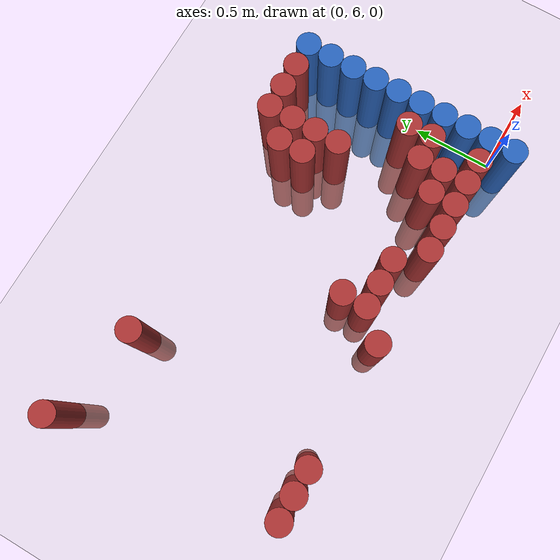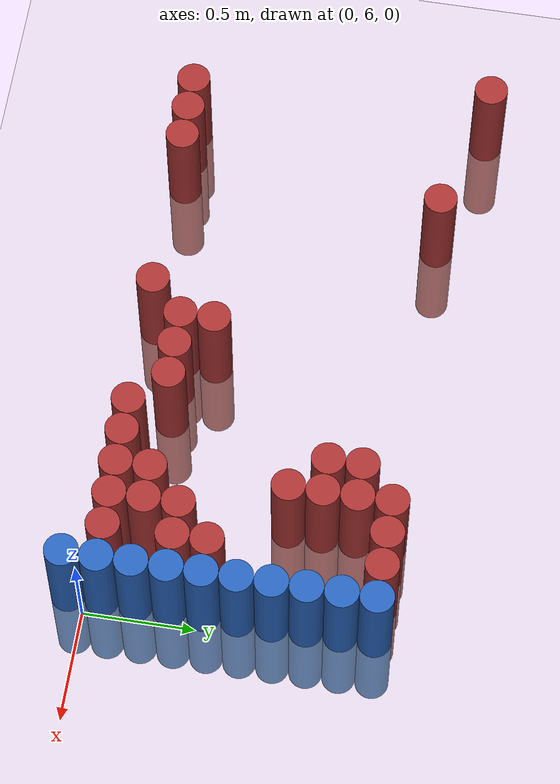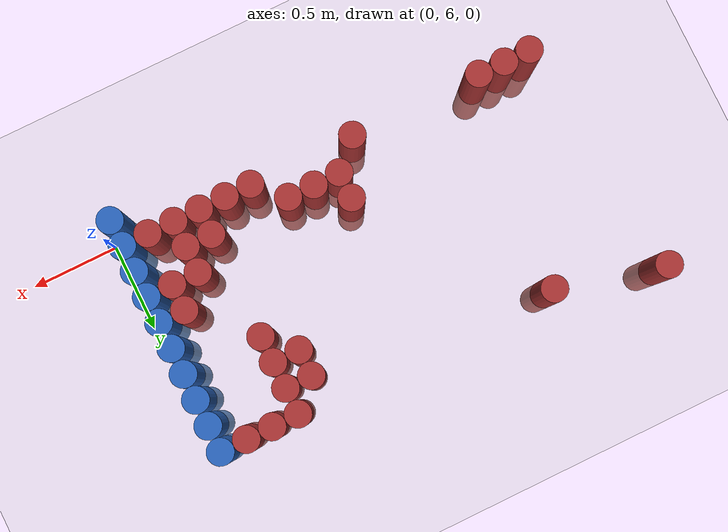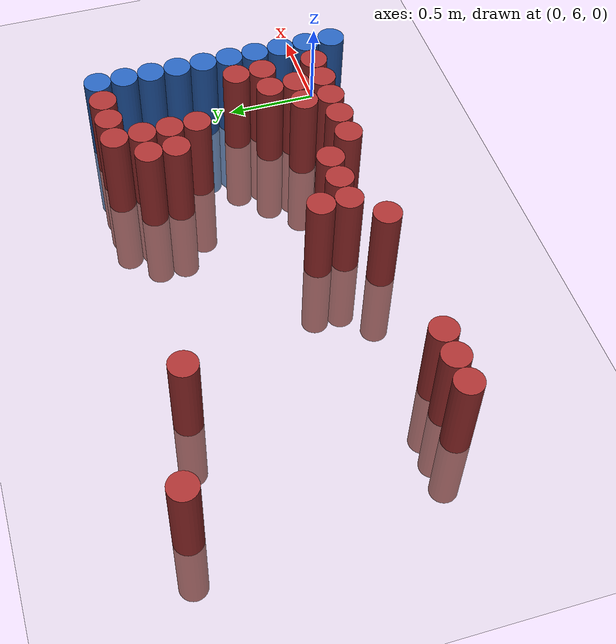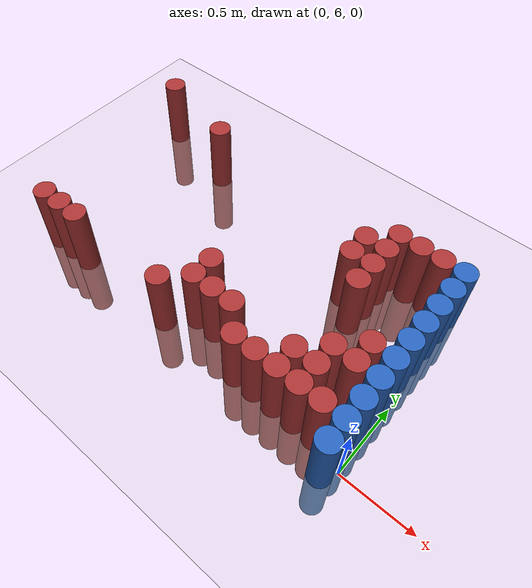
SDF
<sdf version="1.6">
 <world name="default">
  <model name="ground_plane">
   <static>1</static>
   <link name="link">
    <collision name="collision">
     <geometry><plane><normal>0 0 1</normal><size>100 100</size></plane></geometry>
     <surface><friction><ode><mu>100</mu><mu2>50</mu2></ode></friction></surface>
    </collision>
    <visual name="visual">
     <cast_shadows>0</cast_shadows>
     <geometry><plane><normal>0 0 1</normal><size>100 100</size></plane></geometry>
     <material>
      <script><uri>file://media/materials/scripts/gazebo.material</uri><name>Gazebo/Grey</name></script>
     </material>
    </visual>
   </link>
  </model>
  <model name="unit_cylinder_194">
   <static>1</static>
   <pose>-2.625000 7.425000 0.000000 0.000000 0.000000 0.000000</pose>
   <link name="link">
    <inertial>
     <mass>1</mass>
     <inertia><ixx>0.145833</ixx><ixy>0</ixy><ixz>0</ixz><iyy>0.145833</iyy><iyz>0</iyz><izz>0.125</izz></inertia>
    </inertial>
    <collision name="collision">
     <geometry><cylinder><radius>0.075000</radius><length>1</length></cylinder></geometry>
    </collision>
    <visual name="visual">
     <geometry><cylinder><radius>0.075000</radius><length>1</length></cylinder></geometry>
     <material>
      <ambient>0.648000 0.192000 0.192000 1</ambient>
      <diffuse>0.648000 0.192000 0.192000 1</diffuse>
     </material>
     <material>
      <script><name>Gazebo/Grey</name><uri>file://media/materials/scripts/gazebo.material</uri></script>
     </material>
    </visual>
    <sensor name="sensor_contact" type="contact"><contact><collision>collision</collision></contact></sensor>
   </link>
   <plugin filename="gz-sim-touchplugin-system" name="gz::sim::systems::TouchPlugin">
    <target>robot</target>
    <namespace>robot</namespace>
    <time>0.001</time>
    <enabled>true</enabled>
   </plugin>
  </model>
  <model name="unit_cylinder_200">
   <static>1</static>
   <pose>-2.475000 6.075000 0.000000 0.000000 0.000000 0.000000</pose>
   <link name="link">
    <inertial>
     <mass>1</mass>
     <inertia><ixx>0.145833</ixx><ixy>0</ixy><ixz>0</ixz><iyy>0.145833</iyy><iyz>0</iyz><izz>0.125</izz></inertia>
    </inertial>
    <collision name="collision">
     <geometry><cylinder><radius>0.075000</radius><length>1</length></cylinder></geometry>
    </collision>
    <visual name="visual">
     <geometry><cylinder><radius>0.075000</radius><length>1</length></cylinder></geometry>
     <material>
      <ambient>0.648000 0.192000 0.192000 1</ambient>
      <diffuse>0.648000 0.192000 0.192000 1</diffuse>
     </material>
     <material>
      <script><name>Gazebo/Grey</name><uri>file://media/materials/scripts/gazebo.material</uri></script>
     </material>
    </visual>
    <sensor name="sensor_contact" type="contact"><contact><collision>collision</collision></contact></sensor>
   </link>
   <plugin filename="gz-sim-touchplugin-system" name="gz::sim::systems::TouchPlugin">
    <target>robot</target>
    <namespace>robot</namespace>
    <time>0.001</time>
    <enabled>true</enabled>
   </plugin>
  </model>
  <model name="unit_cylinder_207">
   <static>1</static>
   <pose>-2.325000 6.075000 0.000000 0.000000 0.000000 0.000000</pose>
   <link name="link">
    <inertial>
     <mass>1</mass>
     <inertia><ixx>0.145833</ixx><ixy>0</ixy><ixz>0</ixz><iyy>0.145833</iyy><iyz>0</iyz><izz>0.125</izz></inertia>
    </inertial>
    <collision name="collision">
     <geometry><cylinder><radius>0.075000</radius><length>1</length></cylinder></geometry>
    </collision>
    <visual name="visual">
     <geometry><cylinder><radius>0.075000</radius><length>1</length></cylinder></geometry>
     <material>
      <ambient>0.648000 0.192000 0.192000 1</ambient>
      <diffuse>0.648000 0.192000 0.192000 1</diffuse>
     </material>
     <material>
      <script><name>Gazebo/Grey</name><uri>file://media/materials/scripts/gazebo.material</uri></script>
     </material>
    </visual>
    <sensor name="sensor_contact" type="contact"><contact><collision>collision</collision></contact></sensor>
   </link>
   <plugin filename="gz-sim-touchplugin-system" name="gz::sim::systems::TouchPlugin">
    <target>robot</target>
    <namespace>robot</namespace>
    <time>0.001</time>
    <enabled>true</enabled>
   </plugin>
  </model>
  <model name="unit_cylinder_217">
   <static>1</static>
   <pose>-2.175000 6.075000 0.000000 0.000000 0.000000 0.000000</pose>
   <link name="link">
    <inertial>
     <mass>1</mass>
     <inertia><ixx>0.145833</ixx><ixy>0</ixy><ixz>0</ixz><iyy>0.145833</iyy><iyz>0</iyz><izz>0.125</izz></inertia>
    </inertial>
    <collision name="collision">
     <geometry><cylinder><radius>0.075000</radius><length>1</length></cylinder></geometry>
    </collision>
    <visual name="visual">
     <geometry><cylinder><radius>0.075000</radius><length>1</length></cylinder></geometry>
     <material>
      <ambient>0.648000 0.192000 0.192000 1</ambient>
      <diffuse>0.648000 0.192000 0.192000 1</diffuse>
     </material>
     <material>
      <script><name>Gazebo/Grey</name><uri>file://media/materials/scripts/gazebo.material</uri></script>
     </material>
    </visual>
    <sensor name="sensor_contact" type="contact"><contact><collision>collision</collision></contact></sensor>
   </link>
   <plugin filename="gz-sim-touchplugin-system" name="gz::sim::systems::TouchPlugin">
    <target>robot</target>
    <namespace>robot</namespace>
    <time>0.001</time>
    <enabled>true</enabled>
   </plugin>
  </model>
  <model name="unit_cylinder_231">
   <static>1</static>
   <pose>-2.025000 7.275000 0.000000 0.000000 0.000000 0.000000</pose>
   <link name="link">
    <inertial>
     <mass>1</mass>
     <inertia><ixx>0.145833</ixx><ixy>0</ixy><ixz>0</ixz><iyy>0.145833</iyy><iyz>0</iyz><izz>0.125</izz></inertia>
    </inertial>
    <collision name="collision">
     <geometry><cylinder><radius>0.075000</radius><length>1</length></cylinder></geometry>
    </collision>
    <visual name="visual">
     <geometry><cylinder><radius>0.075000</radius><length>1</length></cylinder></geometry>
     <material>
      <ambient>0.648000 0.192000 0.192000 1</ambient>
      <diffuse>0.648000 0.192000 0.192000 1</diffuse>
     </material>
     <material>
      <script><name>Gazebo/Grey</name><uri>file://media/materials/scripts/gazebo.material</uri></script>
     </material>
    </visual>
    <sensor name="sensor_contact" type="contact"><contact><collision>collision</collision></contact></sensor>
   </link>
   <plugin filename="gz-sim-touchplugin-system" name="gz::sim::systems::TouchPlugin">
    <target>robot</target>
    <namespace>robot</namespace>
    <time>0.001</time>
    <enabled>true</enabled>
   </plugin>
  </model>
  <model name="unit_cylinder_248">
   <static>1</static>
   <pose>-1.425000 6.075000 0.000000 0.000000 0.000000 0.000000</pose>
   <link name="link">
    <inertial>
     <mass>1</mass>
     <inertia><ixx>0.145833</ixx><ixy>0</ixy><ixz>0</ixz><iyy>0.145833</iyy><iyz>0</iyz><izz>0.125</izz></inertia>
    </inertial>
    <collision name="collision">
     <geometry><cylinder><radius>0.075000</radius><length>1</length></cylinder></geometry>
    </collision>
    <visual name="visual">
     <geometry><cylinder><radius>0.075000</radius><length>1</length></cylinder></geometry>
     <material>
      <ambient>0.648000 0.192000 0.192000 1</ambient>
      <diffuse>0.648000 0.192000 0.192000 1</diffuse>
     </material>
     <material>
      <script><name>Gazebo/Grey</name><uri>file://media/materials/scripts/gazebo.material</uri></script>
     </material>
    </visual>
    <sensor name="sensor_contact" type="contact"><contact><collision>collision</collision></contact></sensor>
   </link>
   <plugin filename="gz-sim-touchplugin-system" name="gz::sim::systems::TouchPlugin">
    <target>robot</target>
    <namespace>robot</namespace>
    <time>0.001</time>
    <enabled>true</enabled>
   </plugin>
  </model>
  <model name="unit_cylinder_250">
   <static>1</static>
   <pose>-1.275000 6.225000 0.000000 0.000000 0.000000 0.000000</pose>
   <link name="link">
    <inertial>
     <mass>1</mass>
     <inertia><ixx>0.145833</ixx><ixy>0</ixy><ixz>0</ixz><iyy>0.145833</iyy><iyz>0</iyz><izz>0.125</izz></inertia>
    </inertial>
    <collision name="collision">
     <geometry><cylinder><radius>0.075000</radius><length>1</length></cylinder></geometry>
    </collision>
    <visual name="visual">
     <geometry><cylinder><radius>0.075000</radius><length>1</length></cylinder></geometry>
     <material>
      <ambient>0.648000 0.192000 0.192000 1</ambient>
      <diffuse>0.648000 0.192000 0.192000 1</diffuse>
     </material>
     <material>
      <script><name>Gazebo/Grey</name><uri>file://media/materials/scripts/gazebo.material</uri></script>
     </material>
    </visual>
    <sensor name="sensor_contact" type="contact"><contact><collision>collision</collision></contact></sensor>
   </link>
   <plugin filename="gz-sim-touchplugin-system" name="gz::sim::systems::TouchPlugin">
    <target>robot</target>
    <namespace>robot</namespace>
    <time>0.001</time>
    <enabled>true</enabled>
   </plugin>
  </model>
  <model name="unit_cylinder_251">
   <static>1</static>
   <pose>-1.275000 6.375000 0.000000 0.000000 0.000000 0.000000</pose>
   <link name="link">
    <inertial>
     <mass>1</mass>
     <inertia><ixx>0.145833</ixx><ixy>0</ixy><ixz>0</ixz><iyy>0.145833</iyy><iyz>0</iyz><izz>0.125</izz></inertia>
    </inertial>
    <collision name="collision">
     <geometry><cylinder><radius>0.075000</radius><length>1</length></cylinder></geometry>
    </collision>
    <visual name="visual">
     <geometry><cylinder><radius>0.075000</radius><length>1</length></cylinder></geometry>
     <material>
      <ambient>0.648000 0.192000 0.192000 1</ambient>
      <diffuse>0.648000 0.192000 0.192000 1</diffuse>
     </material>
     <material>
      <script><name>Gazebo/Grey</name><uri>file://media/materials/scripts/gazebo.material</uri></script>
     </material>
    </visual>
    <sensor name="sensor_contact" type="contact"><contact><collision>collision</collision></contact></sensor>
   </link>
   <plugin filename="gz-sim-touchplugin-system" name="gz::sim::systems::TouchPlugin">
    <target>robot</target>
    <namespace>robot</namespace>
    <time>0.001</time>
    <enabled>true</enabled>
   </plugin>
  </model>
  <model name="unit_cylinder_252">
   <static>1</static>
   <pose>-1.125000 6.225000 0.000000 0.000000 0.000000 0.000000</pose>
   <link name="link">
    <inertial>
     <mass>1</mass>
     <inertia><ixx>0.145833</ixx><ixy>0</ixy><ixz>0</ixz><iyy>0.145833</iyy><iyz>0</iyz><izz>0.125</izz></inertia>
    </inertial>
    <collision name="collision">
     <geometry><cylinder><radius>0.075000</radius><length>1</length></cylinder></geometry>
    </collision>
    <visual name="visual">
     <geometry><cylinder><radius>0.075000</radius><length>1</length></cylinder></geometry>
     <material>
      <ambient>0.648000 0.192000 0.192000 1</ambient>
      <diffuse>0.648000 0.192000 0.192000 1</diffuse>
     </material>
     <material>
      <script><name>Gazebo/Grey</name><uri>file://media/materials/scripts/gazebo.material</uri></script>
     </material>
    </visual>
    <sensor name="sensor_contact" type="contact"><contact><collision>collision</collision></contact></sensor>
   </link>
   <plugin filename="gz-sim-touchplugin-system" name="gz::sim::systems::TouchPlugin">
    <target>robot</target>
    <namespace>robot</namespace>
    <time>0.001</time>
    <enabled>true</enabled>
   </plugin>
  </model>
  <model name="unit_cylinder_253">
   <static>1</static>
   <pose>-0.975000 6.225000 0.000000 0.000000 0.000000 0.000000</pose>
   <link name="link">
    <inertial>
     <mass>1</mass>
     <inertia><ixx>0.145833</ixx><ixy>0</ixy><ixz>0</ixz><iyy>0.145833</iyy><iyz>0</iyz><izz>0.125</izz></inertia>
    </inertial>
    <collision name="collision">
     <geometry><cylinder><radius>0.075000</radius><length>1</length></cylinder></geometry>
    </collision>
    <visual name="visual">
     <geometry><cylinder><radius>0.075000</radius><length>1</length></cylinder></geometry>
     <material>
      <ambient>0.648000 0.192000 0.192000 1</ambient>
      <diffuse>0.648000 0.192000 0.192000 1</diffuse>
     </material>
     <material>
      <script><name>Gazebo/Grey</name><uri>file://media/materials/scripts/gazebo.material</uri></script>
     </material>
    </visual>
    <sensor name="sensor_contact" type="contact"><contact><collision>collision</collision></contact></sensor>
   </link>
   <plugin filename="gz-sim-touchplugin-system" name="gz::sim::systems::TouchPlugin">
    <target>robot</target>
    <namespace>robot</namespace>
    <time>0.001</time>
    <enabled>true</enabled>
   </plugin>
  </model>
  <model name="unit_cylinder_256">
   <static>1</static>
   <pose>-0.825000 6.075000 0.000000 0.000000 0.000000 0.000000</pose>
   <link name="link">
    <inertial>
     <mass>1</mass>
     <inertia><ixx>0.145833</ixx><ixy>0</ixy><ixz>0</ixz><iyy>0.145833</iyy><iyz>0</iyz><izz>0.125</izz></inertia>
    </inertial>
    <collision name="collision">
     <geometry><cylinder><radius>0.075000</radius><length>1</length></cylinder></geometry>
    </collision>
    <visual name="visual">
     <geometry><cylinder><radius>0.075000</radius><length>1</length></cylinder></geometry>
     <material>
      <ambient>0.648000 0.192000 0.192000 1</ambient>
      <diffuse>0.648000 0.192000 0.192000 1</diffuse>
     </material>
     <material>
      <script><name>Gazebo/Grey</name><uri>file://media/materials/scripts/gazebo.material</uri></script>
     </material>
    </visual>
    <sensor name="sensor_contact" type="contact"><contact><collision>collision</collision></contact></sensor>
   </link>
   <plugin filename="gz-sim-touchplugin-system" name="gz::sim::systems::TouchPlugin">
    <target>robot</target>
    <namespace>robot</namespace>
    <time>0.001</time>
    <enabled>true</enabled>
   </plugin>
  </model>
  <model name="unit_cylinder_259">
   <static>1</static>
   <pose>-0.675000 6.075000 0.000000 0.000000 0.000000 0.000000</pose>
   <link name="link">
    <inertial>
     <mass>1</mass>
     <inertia><ixx>0.145833</ixx><ixy>0</ixy><ixz>0</ixz><iyy>0.145833</iyy><iyz>0</iyz><izz>0.125</izz></inertia>
    </inertial>
    <collision name="collision">
     <geometry><cylinder><radius>0.075000</radius><length>1</length></cylinder></geometry>
    </collision>
    <visual name="visual">
     <geometry><cylinder><radius>0.075000</radius><length>1</length></cylinder></geometry>
     <material>
      <ambient>0.648000 0.192000 0.192000 1</ambient>
      <diffuse>0.648000 0.192000 0.192000 1</diffuse>
     </material>
     <material>
      <script><name>Gazebo/Grey</name><uri>file://media/materials/scripts/gazebo.material</uri></script>
     </material>
    </visual>
    <sensor name="sensor_contact" type="contact"><contact><collision>collision</collision></contact></sensor>
   </link>
   <plugin filename="gz-sim-touchplugin-system" name="gz::sim::systems::TouchPlugin">
    <target>robot</target>
    <namespace>robot</namespace>
    <time>0.001</time>
    <enabled>true</enabled>
   </plugin>
  </model>
  <model name="unit_cylinder_260">
   <static>1</static>
   <pose>-0.675000 6.975000 0.000000 0.000000 0.000000 0.000000</pose>
   <link name="link">
    <inertial>
     <mass>1</mass>
     <inertia><ixx>0.145833</ixx><ixy>0</ixy><ixz>0</ixz><iyy>0.145833</iyy><iyz>0</iyz><izz>0.125</izz></inertia>
    </inertial>
    <collision name="collision">
     <geometry><cylinder><radius>0.075000</radius><length>1</length></cylinder></geometry>
    </collision>
    <visual name="visual">
     <geometry><cylinder><radius>0.075000</radius><length>1</length></cylinder></geometry>
     <material>
      <ambient>0.648000 0.192000 0.192000 1</ambient>
      <diffuse>0.648000 0.192000 0.192000 1</diffuse>
     </material>
     <material>
      <script><name>Gazebo/Grey</name><uri>file://media/materials/scripts/gazebo.material</uri></script>
     </material>
    </visual>
    <sensor name="sensor_contact" type="contact"><contact><collision>collision</collision></contact></sensor>
   </link>
   <plugin filename="gz-sim-touchplugin-system" name="gz::sim::systems::TouchPlugin">
    <target>robot</target>
    <namespace>robot</namespace>
    <time>0.001</time>
    <enabled>true</enabled>
   </plugin>
  </model>
  <model name="unit_cylinder_261">
   <static>1</static>
   <pose>-0.675000 7.125000 0.000000 0.000000 0.000000 0.000000</pose>
   <link name="link">
    <inertial>
     <mass>1</mass>
     <inertia><ixx>0.145833</ixx><ixy>0</ixy><ixz>0</ixz><iyy>0.145833</iyy><iyz>0</iyz><izz>0.125</izz></inertia>
    </inertial>
    <collision name="collision">
     <geometry><cylinder><radius>0.075000</radius><length>1</length></cylinder></geometry>
    </collision>
    <visual name="visual">
     <geometry><cylinder><radius>0.075000</radius><length>1</length></cylinder></geometry>
     <material>
      <ambient>0.648000 0.192000 0.192000 1</ambient>
      <diffuse>0.648000 0.192000 0.192000 1</diffuse>
     </material>
     <material>
      <script><name>Gazebo/Grey</name><uri>file://media/materials/scripts/gazebo.material</uri></script>
     </material>
    </visual>
    <sensor name="sensor_contact" type="contact"><contact><collision>collision</collision></contact></sensor>
   </link>
   <plugin filename="gz-sim-touchplugin-system" name="gz::sim::systems::TouchPlugin">
    <target>robot</target>
    <namespace>robot</namespace>
    <time>0.001</time>
    <enabled>true</enabled>
   </plugin>
  </model>
  <model name="unit_cylinder_267">
   <static>1</static>
   <pose>-0.525000 6.075000 0.000000 0.000000 0.000000 0.000000</pose>
   <link name="link">
    <inertial>
     <mass>1</mass>
     <inertia><ixx>0.145833</ixx><ixy>0</ixy><ixz>0</ixz><iyy>0.145833</iyy><iyz>0</iyz><izz>0.125</izz></inertia>
    </inertial>
    <collision name="collision">
     <geometry><cylinder><radius>0.075000</radius><length>1</length></cylinder></geometry>
    </collision>
    <visual name="visual">
     <geometry><cylinder><radius>0.075000</radius><length>1</length></cylinder></geometry>
     <material>
      <ambient>0.648000 0.192000 0.192000 1</ambient>
      <diffuse>0.648000 0.192000 0.192000 1</diffuse>
     </material>
     <material>
      <script><name>Gazebo/Grey</name><uri>file://media/materials/scripts/gazebo.material</uri></script>
     </material>
    </visual>
    <sensor name="sensor_contact" type="contact"><contact><collision>collision</collision></contact></sensor>
   </link>
   <plugin filename="gz-sim-touchplugin-system" name="gz::sim::systems::TouchPlugin">
    <target>robot</target>
    <namespace>robot</namespace>
    <time>0.001</time>
    <enabled>true</enabled>
   </plugin>
  </model>
  <model name="unit_cylinder_268">
   <static>1</static>
   <pose>-0.525000 6.225000 0.000000 0.000000 0.000000 0.000000</pose>
   <link name="link">
    <inertial>
     <mass>1</mass>
     <inertia><ixx>0.145833</ixx><ixy>0</ixy><ixz>0</ixz><iyy>0.145833</iyy><iyz>0</iyz><izz>0.125</izz></inertia>
    </inertial>
    <collision name="collision">
     <geometry><cylinder><radius>0.075000</radius><length>1</length></cylinder></geometry>
    </collision>
    <visual name="visual">
     <geometry><cylinder><radius>0.075000</radius><length>1</length></cylinder></geometry>
     <material>
      <ambient>0.648000 0.192000 0.192000 1</ambient>
      <diffuse>0.648000 0.192000 0.192000 1</diffuse>
     </material>
     <material>
      <script><name>Gazebo/Grey</name><uri>file://media/materials/scripts/gazebo.material</uri></script>
     </material>
    </visual>
    <sensor name="sensor_contact" type="contact"><contact><collision>collision</collision></contact></sensor>
   </link>
   <plugin filename="gz-sim-touchplugin-system" name="gz::sim::systems::TouchPlugin">
    <target>robot</target>
    <namespace>robot</namespace>
    <time>0.001</time>
    <enabled>true</enabled>
   </plugin>
  </model>
  <model name="unit_cylinder_269">
   <static>1</static>
   <pose>-0.525000 6.825000 0.000000 0.000000 0.000000 0.000000</pose>
   <link name="link">
    <inertial>
     <mass>1</mass>
     <inertia><ixx>0.145833</ixx><ixy>0</ixy><ixz>0</ixz><iyy>0.145833</iyy><iyz>0</iyz><izz>0.125</izz></inertia>
    </inertial>
    <collision name="collision">
     <geometry><cylinder><radius>0.075000</radius><length>1</length></cylinder></geometry>
    </collision>
    <visual name="visual">
     <geometry><cylinder><radius>0.075000</radius><length>1</length></cylinder></geometry>
     <material>
      <ambient>0.648000 0.192000 0.192000 1</ambient>
      <diffuse>0.648000 0.192000 0.192000 1</diffuse>
     </material>
     <material>
      <script><name>Gazebo/Grey</name><uri>file://media/materials/scripts/gazebo.material</uri></script>
     </material>
    </visual>
    <sensor name="sensor_contact" type="contact"><contact><collision>collision</collision></contact></sensor>
   </link>
   <plugin filename="gz-sim-touchplugin-system" name="gz::sim::systems::TouchPlugin">
    <target>robot</target>
    <namespace>robot</namespace>
    <time>0.001</time>
    <enabled>true</enabled>
   </plugin>
  </model>
  <model name="unit_cylinder_270">
   <static>1</static>
   <pose>-0.525000 6.975000 0.000000 0.000000 0.000000 0.000000</pose>
   <link name="link">
    <inertial>
     <mass>1</mass>
     <inertia><ixx>0.145833</ixx><ixy>0</ixy><ixz>0</ixz><iyy>0.145833</iyy><iyz>0</iyz><izz>0.125</izz></inertia>
    </inertial>
    <collision name="collision">
     <geometry><cylinder><radius>0.075000</radius><length>1</length></cylinder></geometry>
    </collision>
    <visual name="visual">
     <geometry><cylinder><radius>0.075000</radius><length>1</length></cylinder></geometry>
     <material>
      <ambient>0.648000 0.192000 0.192000 1</ambient>
      <diffuse>0.648000 0.192000 0.192000 1</diffuse>
     </material>
     <material>
      <script><name>Gazebo/Grey</name><uri>file://media/materials/scripts/gazebo.material</uri></script>
     </material>
    </visual>
    <sensor name="sensor_contact" type="contact"><contact><collision>collision</collision></contact></sensor>
   </link>
   <plugin filename="gz-sim-touchplugin-system" name="gz::sim::systems::TouchPlugin">
    <target>robot</target>
    <namespace>robot</namespace>
    <time>0.001</time>
    <enabled>true</enabled>
   </plugin>
  </model>
  <model name="unit_cylinder_271">
   <static>1</static>
   <pose>-0.525000 7.125000 0.000000 0.000000 0.000000 0.000000</pose>
   <link name="link">
    <inertial>
     <mass>1</mass>
     <inertia><ixx>0.145833</ixx><ixy>0</ixy><ixz>0</ixz><iyy>0.145833</iyy><iyz>0</iyz><izz>0.125</izz></inertia>
    </inertial>
    <collision name="collision">
     <geometry><cylinder><radius>0.075000</radius><length>1</length></cylinder></geometry>
    </collision>
    <visual name="visual">
     <geometry><cylinder><radius>0.075000</radius><length>1</length></cylinder></geometry>
     <material>
      <ambient>0.648000 0.192000 0.192000 1</ambient>
      <diffuse>0.648000 0.192000 0.192000 1</diffuse>
     </material>
     <material>
      <script><name>Gazebo/Grey</name><uri>file://media/materials/scripts/gazebo.material</uri></script>
     </material>
    </visual>
    <sensor name="sensor_contact" type="contact"><contact><collision>collision</collision></contact></sensor>
   </link>
   <plugin filename="gz-sim-touchplugin-system" name="gz::sim::systems::TouchPlugin">
    <target>robot</target>
    <namespace>robot</namespace>
    <time>0.001</time>
    <enabled>true</enabled>
   </plugin>
  </model>
  <model name="unit_cylinder_272">
   <static>1</static>
   <pose>-0.525000 7.275000 0.000000 0.000000 0.000000 0.000000</pose>
   <link name="link">
    <inertial>
     <mass>1</mass>
     <inertia><ixx>0.145833</ixx><ixy>0</ixy><ixz>0</ixz><iyy>0.145833</iyy><iyz>0</iyz><izz>0.125</izz></inertia>
    </inertial>
    <collision name="collision">
     <geometry><cylinder><radius>0.075000</radius><length>1</length></cylinder></geometry>
    </collision>
    <visual name="visual">
     <geometry><cylinder><radius>0.075000</radius><length>1</length></cylinder></geometry>
     <material>
      <ambient>0.648000 0.192000 0.192000 1</ambient>
      <diffuse>0.648000 0.192000 0.192000 1</diffuse>
     </material>
     <material>
      <script><name>Gazebo/Grey</name><uri>file://media/materials/scripts/gazebo.material</uri></script>
     </material>
    </visual>
    <sensor name="sensor_contact" type="contact"><contact><collision>collision</collision></contact></sensor>
   </link>
   <plugin filename="gz-sim-touchplugin-system" name="gz::sim::systems::TouchPlugin">
    <target>robot</target>
    <namespace>robot</namespace>
    <time>0.001</time>
    <enabled>true</enabled>
   </plugin>
  </model>
  <model name="unit_cylinder_280">
   <static>1</static>
   <pose>-0.375000 6.075000 0.000000 0.000000 0.000000 0.000000</pose>
   <link name="link">
    <inertial>
     <mass>1</mass>
     <inertia><ixx>0.145833</ixx><ixy>0</ixy><ixz>0</ixz><iyy>0.145833</iyy><iyz>0</iyz><izz>0.125</izz></inertia>
    </inertial>
    <collision name="collision">
     <geometry><cylinder><radius>0.075000</radius><length>1</length></cylinder></geometry>
    </collision>
    <visual name="visual">
     <geometry><cylinder><radius>0.075000</radius><length>1</length></cylinder></geometry>
     <material>
      <ambient>0.648000 0.192000 0.192000 1</ambient>
      <diffuse>0.648000 0.192000 0.192000 1</diffuse>
     </material>
     <material>
      <script><name>Gazebo/Grey</name><uri>file://media/materials/scripts/gazebo.material</uri></script>
     </material>
    </visual>
    <sensor name="sensor_contact" type="contact"><contact><collision>collision</collision></contact></sensor>
   </link>
   <plugin filename="gz-sim-touchplugin-system" name="gz::sim::systems::TouchPlugin">
    <target>robot</target>
    <namespace>robot</namespace>
    <time>0.001</time>
    <enabled>true</enabled>
   </plugin>
  </model>
  <model name="unit_cylinder_281">
   <static>1</static>
   <pose>-0.375000 6.225000 0.000000 0.000000 0.000000 0.000000</pose>
   <link name="link">
    <inertial>
     <mass>1</mass>
     <inertia><ixx>0.145833</ixx><ixy>0</ixy><ixz>0</ixz><iyy>0.145833</iyy><iyz>0</iyz><izz>0.125</izz></inertia>
    </inertial>
    <collision name="collision">
     <geometry><cylinder><radius>0.075000</radius><length>1</length></cylinder></geometry>
    </collision>
    <visual name="visual">
     <geometry><cylinder><radius>0.075000</radius><length>1</length></cylinder></geometry>
     <material>
      <ambient>0.648000 0.192000 0.192000 1</ambient>
      <diffuse>0.648000 0.192000 0.192000 1</diffuse>
     </material>
     <material>
      <script><name>Gazebo/Grey</name><uri>file://media/materials/scripts/gazebo.material</uri></script>
     </material>
    </visual>
    <sensor name="sensor_contact" type="contact"><contact><collision>collision</collision></contact></sensor>
   </link>
   <plugin filename="gz-sim-touchplugin-system" name="gz::sim::systems::TouchPlugin">
    <target>robot</target>
    <namespace>robot</namespace>
    <time>0.001</time>
    <enabled>true</enabled>
   </plugin>
  </model>
  <model name="unit_cylinder_282">
   <static>1</static>
   <pose>-0.375000 6.375000 0.000000 0.000000 0.000000 0.000000</pose>
   <link name="link">
    <inertial>
     <mass>1</mass>
     <inertia><ixx>0.145833</ixx><ixy>0</ixy><ixz>0</ixz><iyy>0.145833</iyy><iyz>0</iyz><izz>0.125</izz></inertia>
    </inertial>
    <collision name="collision">
     <geometry><cylinder><radius>0.075000</radius><length>1</length></cylinder></geometry>
    </collision>
    <visual name="visual">
     <geometry><cylinder><radius>0.075000</radius><length>1</length></cylinder></geometry>
     <material>
      <ambient>0.648000 0.192000 0.192000 1</ambient>
      <diffuse>0.648000 0.192000 0.192000 1</diffuse>
     </material>
     <material>
      <script><name>Gazebo/Grey</name><uri>file://media/materials/scripts/gazebo.material</uri></script>
     </material>
    </visual>
    <sensor name="sensor_contact" type="contact"><contact><collision>collision</collision></contact></sensor>
   </link>
   <plugin filename="gz-sim-touchplugin-system" name="gz::sim::systems::TouchPlugin">
    <target>robot</target>
    <namespace>robot</namespace>
    <time>0.001</time>
    <enabled>true</enabled>
   </plugin>
  </model>
  <model name="unit_cylinder_283">
   <static>1</static>
   <pose>-0.375000 7.275000 0.000000 0.000000 0.000000 0.000000</pose>
   <link name="link">
    <inertial>
     <mass>1</mass>
     <inertia><ixx>0.145833</ixx><ixy>0</ixy><ixz>0</ixz><iyy>0.145833</iyy><iyz>0</iyz><izz>0.125</izz></inertia>
    </inertial>
    <collision name="collision">
     <geometry><cylinder><radius>0.075000</radius><length>1</length></cylinder></geometry>
    </collision>
    <visual name="visual">
     <geometry><cylinder><radius>0.075000</radius><length>1</length></cylinder></geometry>
     <material>
      <ambient>0.648000 0.192000 0.192000 1</ambient>
      <diffuse>0.648000 0.192000 0.192000 1</diffuse>
     </material>
     <material>
      <script><name>Gazebo/Grey</name><uri>file://media/materials/scripts/gazebo.material</uri></script>
     </material>
    </visual>
    <sensor name="sensor_contact" type="contact"><contact><collision>collision</collision></contact></sensor>
   </link>
   <plugin filename="gz-sim-touchplugin-system" name="gz::sim::systems::TouchPlugin">
    <target>robot</target>
    <namespace>robot</namespace>
    <time>0.001</time>
    <enabled>true</enabled>
   </plugin>
  </model>
  <model name="unit_cylinder_296">
   <static>1</static>
   <pose>-0.225000 6.075000 0.000000 0.000000 0.000000 0.000000</pose>
   <link name="link">
    <inertial>
     <mass>1</mass>
     <inertia><ixx>0.145833</ixx><ixy>0</ixy><ixz>0</ixz><iyy>0.145833</iyy><iyz>0</iyz><izz>0.125</izz></inertia>
    </inertial>
    <collision name="collision">
     <geometry><cylinder><radius>0.075000</radius><length>1</length></cylinder></geometry>
    </collision>
    <visual name="visual">
     <geometry><cylinder><radius>0.075000</radius><length>1</length></cylinder></geometry>
     <material>
      <ambient>0.648000 0.192000 0.192000 1</ambient>
      <diffuse>0.648000 0.192000 0.192000 1</diffuse>
     </material>
     <material>
      <script><name>Gazebo/Grey</name><uri>file://media/materials/scripts/gazebo.material</uri></script>
     </material>
    </visual>
    <sensor name="sensor_contact" type="contact"><contact><collision>collision</collision></contact></sensor>
   </link>
   <plugin filename="gz-sim-touchplugin-system" name="gz::sim::systems::TouchPlugin">
    <target>robot</target>
    <namespace>robot</namespace>
    <time>0.001</time>
    <enabled>true</enabled>
   </plugin>
  </model>
  <model name="unit_cylinder_297">
   <static>1</static>
   <pose>-0.225000 6.375000 0.000000 0.000000 0.000000 0.000000</pose>
   <link name="link">
    <inertial>
     <mass>1</mass>
     <inertia><ixx>0.145833</ixx><ixy>0</ixy><ixz>0</ixz><iyy>0.145833</iyy><iyz>0</iyz><izz>0.125</izz></inertia>
    </inertial>
    <collision name="collision">
     <geometry><cylinder><radius>0.075000</radius><length>1</length></cylinder></geometry>
    </collision>
    <visual name="visual">
     <geometry><cylinder><radius>0.075000</radius><length>1</length></cylinder></geometry>
     <material>
      <ambient>0.648000 0.192000 0.192000 1</ambient>
      <diffuse>0.648000 0.192000 0.192000 1</diffuse>
     </material>
     <material>
      <script><name>Gazebo/Grey</name><uri>file://media/materials/scripts/gazebo.material</uri></script>
     </material>
    </visual>
    <sensor name="sensor_contact" type="contact"><contact><collision>collision</collision></contact></sensor>
   </link>
   <plugin filename="gz-sim-touchplugin-system" name="gz::sim::systems::TouchPlugin">
    <target>robot</target>
    <namespace>robot</namespace>
    <time>0.001</time>
    <enabled>true</enabled>
   </plugin>
  </model>
  <model name="unit_cylinder_298">
   <static>1</static>
   <pose>-0.225000 6.525000 0.000000 0.000000 0.000000 0.000000</pose>
   <link name="link">
    <inertial>
     <mass>1</mass>
     <inertia><ixx>0.145833</ixx><ixy>0</ixy><ixz>0</ixz><iyy>0.145833</iyy><iyz>0</iyz><izz>0.125</izz></inertia>
    </inertial>
    <collision name="collision">
     <geometry><cylinder><radius>0.075000</radius><length>1</length></cylinder></geometry>
    </collision>
    <visual name="visual">
     <geometry><cylinder><radius>0.075000</radius><length>1</length></cylinder></geometry>
     <material>
      <ambient>0.648000 0.192000 0.192000 1</ambient>
      <diffuse>0.648000 0.192000 0.192000 1</diffuse>
     </material>
     <material>
      <script><name>Gazebo/Grey</name><uri>file://media/materials/scripts/gazebo.material</uri></script>
     </material>
    </visual>
    <sensor name="sensor_contact" type="contact"><contact><collision>collision</collision></contact></sensor>
   </link>
   <plugin filename="gz-sim-touchplugin-system" name="gz::sim::systems::TouchPlugin">
    <target>robot</target>
    <namespace>robot</namespace>
    <time>0.001</time>
    <enabled>true</enabled>
   </plugin>
  </model>
  <model name="unit_cylinder_299">
   <static>1</static>
   <pose>-0.225000 7.275000 0.000000 0.000000 0.000000 0.000000</pose>
   <link name="link">
    <inertial>
     <mass>1</mass>
     <inertia><ixx>0.145833</ixx><ixy>0</ixy><ixz>0</ixz><iyy>0.145833</iyy><iyz>0</iyz><izz>0.125</izz></inertia>
    </inertial>
    <collision name="collision">
     <geometry><cylinder><radius>0.075000</radius><length>1</length></cylinder></geometry>
    </collision>
    <visual name="visual">
     <geometry><cylinder><radius>0.075000</radius><length>1</length></cylinder></geometry>
     <material>
      <ambient>0.648000 0.192000 0.192000 1</ambient>
      <diffuse>0.648000 0.192000 0.192000 1</diffuse>
     </material>
     <material>
      <script><name>Gazebo/Grey</name><uri>file://media/materials/scripts/gazebo.material</uri></script>
     </material>
    </visual>
    <sensor name="sensor_contact" type="contact"><contact><collision>collision</collision></contact></sensor>
   </link>
   <plugin filename="gz-sim-touchplugin-system" name="gz::sim::systems::TouchPlugin">
    <target>robot</target>
    <namespace>robot</namespace>
    <time>0.001</time>
    <enabled>true</enabled>
   </plugin>
  </model>
  <model name="unit_cylinder_314">
   <static>1</static>
   <pose>-0.075000 5.925000 0.000000 0.000000 0.000000 0.000000</pose>
   <link name="link">
    <inertial>
     <mass>1</mass>
     <inertia><ixx>0.145833</ixx><ixy>0</ixy><ixz>0</ixz><iyy>0.145833</iyy><iyz>0</iyz><izz>0.125</izz></inertia>
    </inertial>
    <collision name="collision">
     <geometry><cylinder><radius>0.075000</radius><length>1</length></cylinder></geometry>
    </collision>
    <visual name="visual">
     <geometry><cylinder><radius>0.075000</radius><length>1</length></cylinder></geometry>
     <material>
      <ambient>0.152000 0.379000 0.720000 1</ambient>
      <diffuse>0.152000 0.379000 0.720000 1</diffuse>
     </material>
     <material>
      <script><name>Gazebo/Grey</name><uri>file://media/materials/scripts/gazebo.material</uri></script>
     </material>
    </visual>
    <sensor name="sensor_contact" type="contact"><contact><collision>collision</collision></contact></sensor>
   </link>
   <plugin filename="gz-sim-touchplugin-system" name="gz::sim::systems::TouchPlugin">
    <target>robot</target>
    <namespace>robot</namespace>
    <time>0.001</time>
    <enabled>true</enabled>
   </plugin>
  </model>
  <model name="unit_cylinder_315">
   <static>1</static>
   <pose>-0.075000 6.075000 0.000000 0.000000 0.000000 0.000000</pose>
   <link name="link">
    <inertial>
     <mass>1</mass>
     <inertia><ixx>0.145833</ixx><ixy>0</ixy><ixz>0</ixz><iyy>0.145833</iyy><iyz>0</iyz><izz>0.125</izz></inertia>
    </inertial>
    <collision name="collision">
     <geometry><cylinder><radius>0.075000</radius><length>1</length></cylinder></geometry>
    </collision>
    <visual name="visual">
     <geometry><cylinder><radius>0.075000</radius><length>1</length></cylinder></geometry>
     <material>
      <ambient>0.152000 0.379000 0.720000 1</ambient>
      <diffuse>0.152000 0.379000 0.720000 1</diffuse>
     </material>
     <material>
      <script><name>Gazebo/Grey</name><uri>file://media/materials/scripts/gazebo.material</uri></script>
     </material>
    </visual>
    <sensor name="sensor_contact" type="contact"><contact><collision>collision</collision></contact></sensor>
   </link>
   <plugin filename="gz-sim-touchplugin-system" name="gz::sim::systems::TouchPlugin">
    <target>robot</target>
    <namespace>robot</namespace>
    <time>0.001</time>
    <enabled>true</enabled>
   </plugin>
  </model>
  <model name="unit_cylinder_316">
   <static>1</static>
   <pose>-0.075000 6.225000 0.000000 0.000000 0.000000 0.000000</pose>
   <link name="link">
    <inertial>
     <mass>1</mass>
     <inertia><ixx>0.145833</ixx><ixy>0</ixy><ixz>0</ixz><iyy>0.145833</iyy><iyz>0</iyz><izz>0.125</izz></inertia>
    </inertial>
    <collision name="collision">
     <geometry><cylinder><radius>0.075000</radius><length>1</length></cylinder></geometry>
    </collision>
    <visual name="visual">
     <geometry><cylinder><radius>0.075000</radius><length>1</length></cylinder></geometry>
     <material>
      <ambient>0.152000 0.379000 0.720000 1</ambient>
      <diffuse>0.152000 0.379000 0.720000 1</diffuse>
     </material>
     <material>
      <script><name>Gazebo/Grey</name><uri>file://media/materials/scripts/gazebo.material</uri></script>
     </material>
    </visual>
    <sensor name="sensor_contact" type="contact"><contact><collision>collision</collision></contact></sensor>
   </link>
   <plugin filename="gz-sim-touchplugin-system" name="gz::sim::systems::TouchPlugin">
    <target>robot</target>
    <namespace>robot</namespace>
    <time>0.001</time>
    <enabled>true</enabled>
   </plugin>
  </model>
  <model name="unit_cylinder_317">
   <static>1</static>
   <pose>-0.075000 6.375000 0.000000 0.000000 0.000000 0.000000</pose>
   <link name="link">
    <inertial>
     <mass>1</mass>
     <inertia><ixx>0.145833</ixx><ixy>0</ixy><ixz>0</ixz><iyy>0.145833</iyy><iyz>0</iyz><izz>0.125</izz></inertia>
    </inertial>
    <collision name="collision">
     <geometry><cylinder><radius>0.075000</radius><length>1</length></cylinder></geometry>
    </collision>
    <visual name="visual">
     <geometry><cylinder><radius>0.075000</radius><length>1</length></cylinder></geometry>
     <material>
      <ambient>0.152000 0.379000 0.720000 1</ambient>
      <diffuse>0.152000 0.379000 0.720000 1</diffuse>
     </material>
     <material>
      <script><name>Gazebo/Grey</name><uri>file://media/materials/scripts/gazebo.material</uri></script>
     </material>
    </visual>
    <sensor name="sensor_contact" type="contact"><contact><collision>collision</collision></contact></sensor>
   </link>
   <plugin filename="gz-sim-touchplugin-system" name="gz::sim::systems::TouchPlugin">
    <target>robot</target>
    <namespace>robot</namespace>
    <time>0.001</time>
    <enabled>true</enabled>
   </plugin>
  </model>
  <model name="unit_cylinder_318">
   <static>1</static>
   <pose>-0.075000 6.525000 0.000000 0.000000 0.000000 0.000000</pose>
   <link name="link">
    <inertial>
     <mass>1</mass>
     <inertia><ixx>0.145833</ixx><ixy>0</ixy><ixz>0</ixz><iyy>0.145833</iyy><iyz>0</iyz><izz>0.125</izz></inertia>
    </inertial>
    <collision name="collision">
     <geometry><cylinder><radius>0.075000</radius><length>1</length></cylinder></geometry>
    </collision>
    <visual name="visual">
     <geometry><cylinder><radius>0.075000</radius><length>1</length></cylinder></geometry>
     <material>
      <ambient>0.152000 0.379000 0.720000 1</ambient>
      <diffuse>0.152000 0.379000 0.720000 1</diffuse>
     </material>
     <material>
      <script><name>Gazebo/Grey</name><uri>file://media/materials/scripts/gazebo.material</uri></script>
     </material>
    </visual>
    <sensor name="sensor_contact" type="contact"><contact><collision>collision</collision></contact></sensor>
   </link>
   <plugin filename="gz-sim-touchplugin-system" name="gz::sim::systems::TouchPlugin">
    <target>robot</target>
    <namespace>robot</namespace>
    <time>0.001</time>
    <enabled>true</enabled>
   </plugin>
  </model>
  <model name="unit_cylinder_319">
   <static>1</static>
   <pose>-0.075000 6.675000 0.000000 0.000000 0.000000 0.000000</pose>
   <link name="link">
    <inertial>
     <mass>1</mass>
     <inertia><ixx>0.145833</ixx><ixy>0</ixy><ixz>0</ixz><iyy>0.145833</iyy><iyz>0</iyz><izz>0.125</izz></inertia>
    </inertial>
    <collision name="collision">
     <geometry><cylinder><radius>0.075000</radius><length>1</length></cylinder></geometry>
    </collision>
    <visual name="visual">
     <geometry><cylinder><radius>0.075000</radius><length>1</length></cylinder></geometry>
     <material>
      <ambient>0.152000 0.379000 0.720000 1</ambient>
      <diffuse>0.152000 0.379000 0.720000 1</diffuse>
     </material>
     <material>
      <script><name>Gazebo/Grey</name><uri>file://media/materials/scripts/gazebo.material</uri></script>
     </material>
    </visual>
    <sensor name="sensor_contact" type="contact"><contact><collision>collision</collision></contact></sensor>
   </link>
   <plugin filename="gz-sim-touchplugin-system" name="gz::sim::systems::TouchPlugin">
    <target>robot</target>
    <namespace>robot</namespace>
    <time>0.001</time>
    <enabled>true</enabled>
   </plugin>
  </model>
  <model name="unit_cylinder_320">
   <static>1</static>
   <pose>-0.075000 6.825000 0.000000 0.000000 0.000000 0.000000</pose>
   <link name="link">
    <inertial>
     <mass>1</mass>
     <inertia><ixx>0.145833</ixx><ixy>0</ixy><ixz>0</ixz><iyy>0.145833</iyy><iyz>0</iyz><izz>0.125</izz></inertia>
    </inertial>
    <collision name="collision">
     <geometry><cylinder><radius>0.075000</radius><length>1</length></cylinder></geometry>
    </collision>
    <visual name="visual">
     <geometry><cylinder><radius>0.075000</radius><length>1</length></cylinder></geometry>
     <material>
      <ambient>0.152000 0.379000 0.720000 1</ambient>
      <diffuse>0.152000 0.379000 0.720000 1</diffuse>
     </material>
     <material>
      <script><name>Gazebo/Grey</name><uri>file://media/materials/scripts/gazebo.material</uri></script>
     </material>
    </visual>
    <sensor name="sensor_contact" type="contact"><contact><collision>collision</collision></contact></sensor>
   </link>
   <plugin filename="gz-sim-touchplugin-system" name="gz::sim::systems::TouchPlugin">
    <target>robot</target>
    <namespace>robot</namespace>
    <time>0.001</time>
    <enabled>true</enabled>
   </plugin>
  </model>
  <model name="unit_cylinder_321">
   <static>1</static>
   <pose>-0.075000 6.975000 0.000000 0.000000 0.000000 0.000000</pose>
   <link name="link">
    <inertial>
     <mass>1</mass>
     <inertia><ixx>0.145833</ixx><ixy>0</ixy><ixz>0</ixz><iyy>0.145833</iyy><iyz>0</iyz><izz>0.125</izz></inertia>
    </inertial>
    <collision name="collision">
     <geometry><cylinder><radius>0.075000</radius><length>1</length></cylinder></geometry>
    </collision>
    <visual name="visual">
     <geometry><cylinder><radius>0.075000</radius><length>1</length></cylinder></geometry>
     <material>
      <ambient>0.152000 0.379000 0.720000 1</ambient>
      <diffuse>0.152000 0.379000 0.720000 1</diffuse>
     </material>
     <material>
      <script><name>Gazebo/Grey</name><uri>file://media/materials/scripts/gazebo.material</uri></script>
     </material>
    </visual>
    <sensor name="sensor_contact" type="contact"><contact><collision>collision</collision></contact></sensor>
   </link>
   <plugin filename="gz-sim-touchplugin-system" name="gz::sim::systems::TouchPlugin">
    <target>robot</target>
    <namespace>robot</namespace>
    <time>0.001</time>
    <enabled>true</enabled>
   </plugin>
  </model>
  <model name="unit_cylinder_322">
   <static>1</static>
   <pose>-0.075000 7.125000 0.000000 0.000000 0.000000 0.000000</pose>
   <link name="link">
    <inertial>
     <mass>1</mass>
     <inertia><ixx>0.145833</ixx><ixy>0</ixy><ixz>0</ixz><iyy>0.145833</iyy><iyz>0</iyz><izz>0.125</izz></inertia>
    </inertial>
    <collision name="collision">
     <geometry><cylinder><radius>0.075000</radius><length>1</length></cylinder></geometry>
    </collision>
    <visual name="visual">
     <geometry><cylinder><radius>0.075000</radius><length>1</length></cylinder></geometry>
     <material>
      <ambient>0.152000 0.379000 0.720000 1</ambient>
      <diffuse>0.152000 0.379000 0.720000 1</diffuse>
     </material>
     <material>
      <script><name>Gazebo/Grey</name><uri>file://media/materials/scripts/gazebo.material</uri></script>
     </material>
    </visual>
    <sensor name="sensor_contact" type="contact"><contact><collision>collision</collision></contact></sensor>
   </link>
   <plugin filename="gz-sim-touchplugin-system" name="gz::sim::systems::TouchPlugin">
    <target>robot</target>
    <namespace>robot</namespace>
    <time>0.001</time>
    <enabled>true</enabled>
   </plugin>
  </model>
  <model name="unit_cylinder_323">
   <static>1</static>
   <pose>-0.075000 7.275000 0.000000 0.000000 0.000000 0.000000</pose>
   <link name="link">
    <inertial>
     <mass>1</mass>
     <inertia><ixx>0.145833</ixx><ixy>0</ixy><ixz>0</ixz><iyy>0.145833</iyy><iyz>0</iyz><izz>0.125</izz></inertia>
    </inertial>
    <collision name="collision">
     <geometry><cylinder><radius>0.075000</radius><length>1</length></cylinder></geometry>
    </collision>
    <visual name="visual">
     <geometry><cylinder><radius>0.075000</radius><length>1</length></cylinder></geometry>
     <material>
      <ambient>0.152000 0.379000 0.720000 1</ambient>
      <diffuse>0.152000 0.379000 0.720000 1</diffuse>
     </material>
     <material>
      <script><name>Gazebo/Grey</name><uri>file://media/materials/scripts/gazebo.material</uri></script>
     </material>
    </visual>
    <sensor name="sensor_contact" type="contact"><contact><collision>collision</collision></contact></sensor>
   </link>
   <plugin filename="gz-sim-touchplugin-system" name="gz::sim::systems::TouchPlugin">
    <target>robot</target>
    <namespace>robot</namespace>
    <time>0.001</time>
    <enabled>true</enabled>
   </plugin>
  </model>
 </world>
</sdf>
